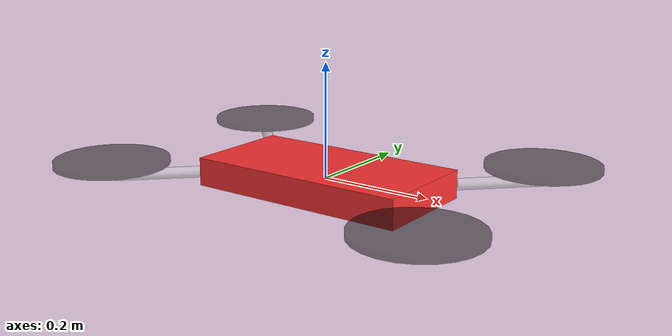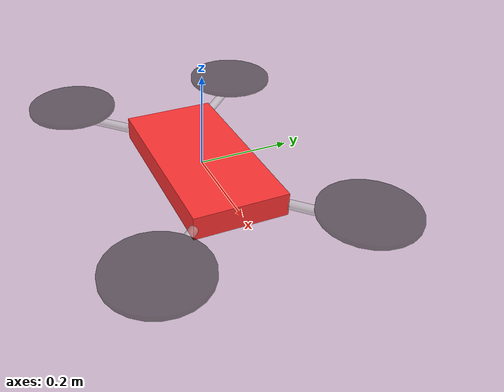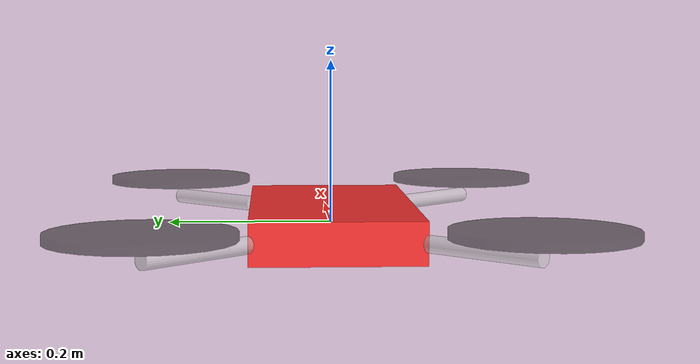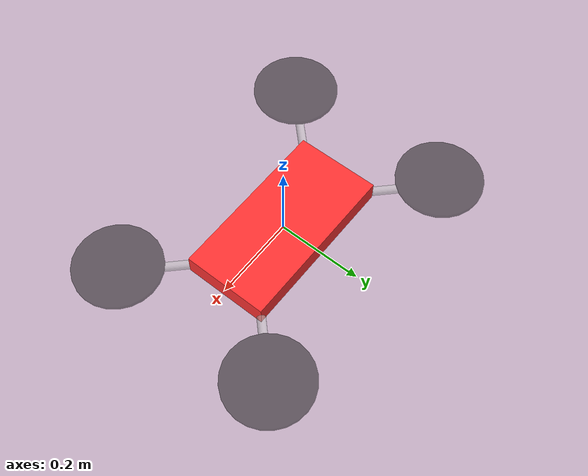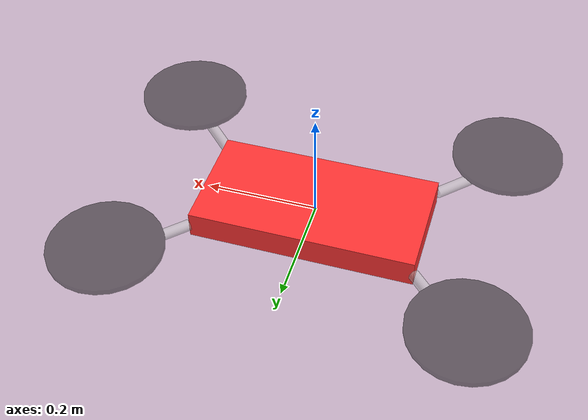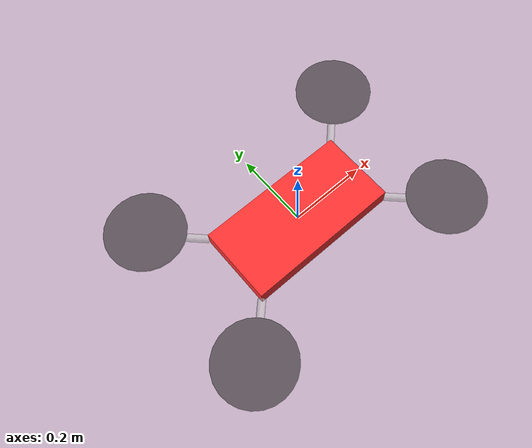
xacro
<?xml version="1.0"?>
<robot xmlns:xacro="http://wiki.ros.org/xacro" name="drone">

    <!-- Properties -->
    <xacro:property name="frameLength" value="0.4"/>
    <xacro:property name="frameBreadth" value="0.2"/>
    <xacro:property name="frameHeight" value="0.05"/>
    <xacro:property name="frameMass" value="0.88"/>
    <xacro:property name="armLength" value="0.15"/>
    <xacro:property name="armRadius" value="0.01"/>
    <xacro:property name="armMass" value="0.02"/>
    <xacro:property name="propellerRadius" value="0.1"/>
    <xacro:property name="propellerHeight" value="0.01"/>
    <xacro:property name="propellerMass" value="0.02"/>

    <!-- Macros -->
    <xacro:macro name="slender_rod_inertial" params="length mass">
        <inertial>
        <mass value="${mass}"/>
        <inertia
            ixx="${(1/12) * mass * (length*length)}"
            ixy="0.0"
            ixz="0.0"
            iyy="0.0"
            iyz="0.0"
            izz="${(1/12) * mass * (length*length)}"
        />
        </inertial>
    </xacro:macro>

    <xacro:macro name="rectangle_inertial" params="frameLength frameBreadth frameHeight mass *origin">
        <inertial>
            <mass value="${mass}"/>
            <xacro:insert_block name="origin"/>
            <inertia
                ixx="${(1/12) * mass * (frameHeight*frameHeight + frameLength*frameLength)}"
                ixy="0.0"
                ixz="0.0"
                iyy="${(1/12) * mass * (frameBreadth*frameBreadth + frameHeight*frameHeight)}"
                iyz="0.0"
                izz="${(1/12) * mass * (frameLength*frameLength + frameBreadth*frameBreadth)}"
            />
        </inertial>
    </xacro:macro>

    <xacro:macro name="cylinder_inertial" params="radius height mass">
        <inertial>
        <mass value="${mass}"/>
        <inertia
            ixx="${0.0833333 * mass * (3 * radius * radius + height * height)}"
            ixy="0.0"
            ixz="0.0"
            iyy="${0.0833333 * mass * (3 * radius * radius + height * height)}"
            iyz="0.0"
            izz="${0.5 * mass * radius * radius}"
        />
        </inertial>
    </xacro:macro>

    <!-- Arms -->
    <xacro:macro name="arm" params="i x y angle">
        <link name="arm${i}">
            <visual>
                <origin xyz="${armLength/2} 0 0" rpy="0 ${pi/2} 0"/>
                <geometry>
                    <cylinder radius="${armRadius}" length="${armLength}"/>
                </geometry>
                <material name="arm_material"/>
            </visual>

            <collision>
                <origin xyz="${armLength/2} 0 0" rpy="0 ${pi/2} 0"/>
                <geometry>
                    <cylinder radius="${armRadius}" length="${armLength}"/>
                </geometry>
            </collision>

            <xacro:slender_rod_inertial length="${armLength}" mass="${armMass}">
            </xacro:slender_rod_inertial>
        </link>

        <joint name="frame_arm${i}" type="fixed">
        <parent link="frame"/>
        <child link="arm${i}"/>
        <origin xyz="${x} ${y} 0" rpy="0 0 ${angle}"/>
        </joint>
    </xacro:macro>

    <xacro:arm i="1" x="${frameLength/2}" y="-${frameBreadth/2}" angle="-${pi/4}"/>
    <xacro:arm i="2" x="${frameLength/2}" y="${frameBreadth/2}" angle="${pi/4}"/>
    <xacro:arm i="3" x="-${frameLength/2}" y="${frameBreadth/2}" angle="${3*pi/4}"/>
    <xacro:arm i="4" x="-${frameLength/2}" y="-${frameBreadth/2}" angle="-${3*pi/4}"/>

    <!-- Propellers -->
    <xacro:macro name="propeller" params="i x y">
        <link name="propeller${i}">
            <visual>
                <origin xyz="0 0 0" rpy="0 0 0"/>
                <geometry>
                    <cylinder radius="${propellerRadius}" length="${propellerHeight}"/>
                </geometry>
                <material name="propeller_material"/>
            </visual>
            <collision>
                <origin xyz="0 0 0" rpy="0 0 0"/>
                <geometry>
                    <cylinder radius="${propellerRadius}" length="${propellerHeight}"/>
                </geometry>
            </collision>
            <xacro:cylinder_inertial radius="${propellerRadius}" height="${propellerHeight}" mass="${propellerMass}">
            </xacro:cylinder_inertial>

        </link>

        <joint name="arm${i}_propeller${i}" type="continuous">
            <parent link="arm${i}"/>
            <child link="propeller${i}"/>
            <origin xyz="${x} ${y} ${frameHeight/2 - 0.0001}" rpy="0 0 ${pi/4}"/>
            <axis xyz="0 0 1"/>
            <limit effort="0.1" velocity="10"/>
        </joint>
    </xacro:macro>

    <xacro:propeller i="1" x="${armLength}" y="0"/>
    <xacro:propeller i="2" x="${armLength}" y="0" />
    <xacro:propeller i="3" x="${armLength}" y="0" />
    <xacro:propeller i="4" x="${armLength}" y="0" />

    <!-- Frame -->
    <link name="frame">
        <visual>
            <origin xyz="0 0 0" rpy="0 0 0"/>
            <geometry>
                <box size="${frameLength} ${frameBreadth} ${frameHeight}"/>
            </geometry>
            <material name="frame_material"/>
        </visual>
        <collision>
            <origin xyz="0 0 0" rpy="0 0 0"/>
            <geometry>
                <box size="${frameLength} ${frameBreadth} ${frameHeight}"/>
            </geometry>
        </collision>
        <xacro:rectangle_inertial frameLength="${frameLength}" frameBreadth="${frameBreadth}" frameHeight="${frameHeight}" mass="${frameMass}">
            <origin xyz="0 0 0" rpy="0 0 0"/>
        </xacro:rectangle_inertial>
    </link>

    <!-- materials -->
    <material name="frame_material">
        <color rgba="1 0.2 0.2 1"/>
    </material>

    <material name="arm_material">
        <color rgba="0.8 0.8 0.8 0.5"/>
    </material>

    <material name="propeller_material">
        <color rgba="0 0 0 0.5"/>
    </material>

</robot>
